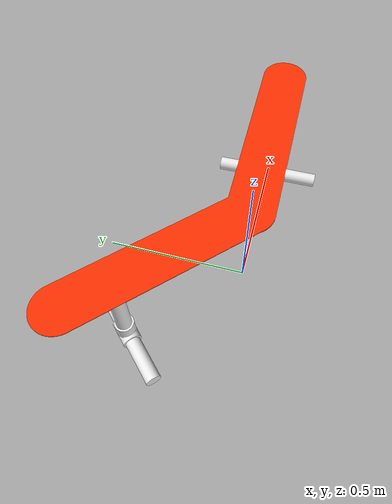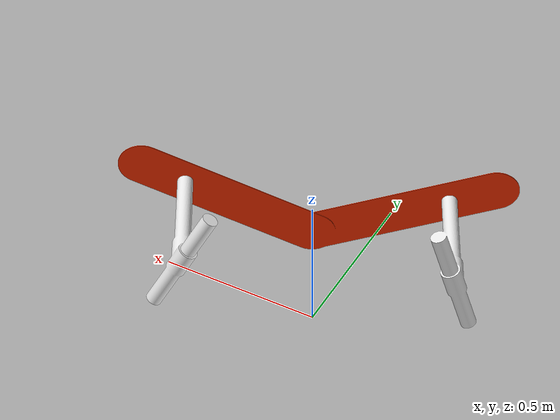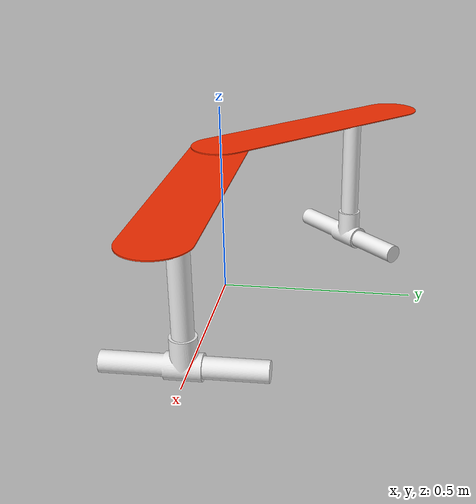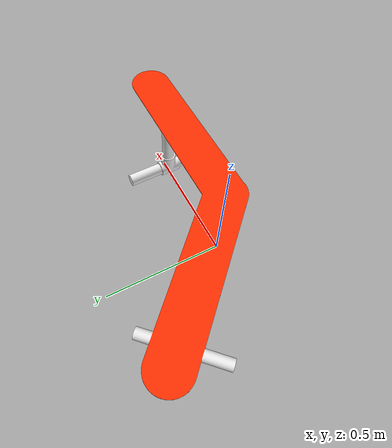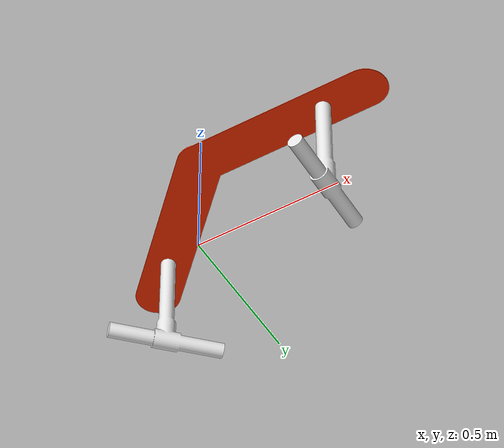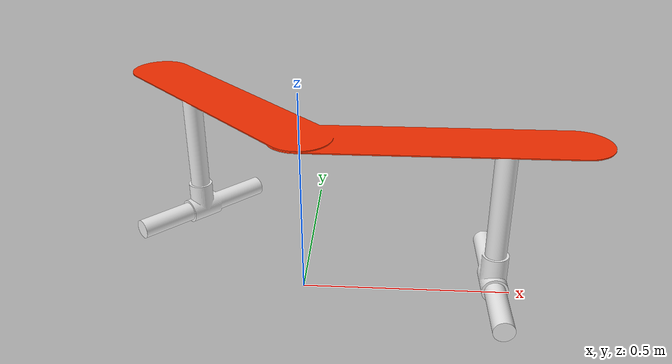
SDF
<?xml version="1.0" ?>
<sdf version="1.9">
    <model name="path_marker_45ccw">
        <static>true</static>
        <link name="path_marker_45ccw">
            <visual name="lane_marker_45right_visual">
                <geometry>
                    <mesh>
                        <uri>lane_marker_45right.dae</uri>
                    </mesh>
                </geometry>
            </visual>
            <collision name="lane_marker_45right_collision">
                <geometry>
                    <mesh>
                        <uri>lane_marker_45right.dae</uri>
                    </mesh>
                </geometry>
            </collision>
        </link>
    </model>
</sdf>
